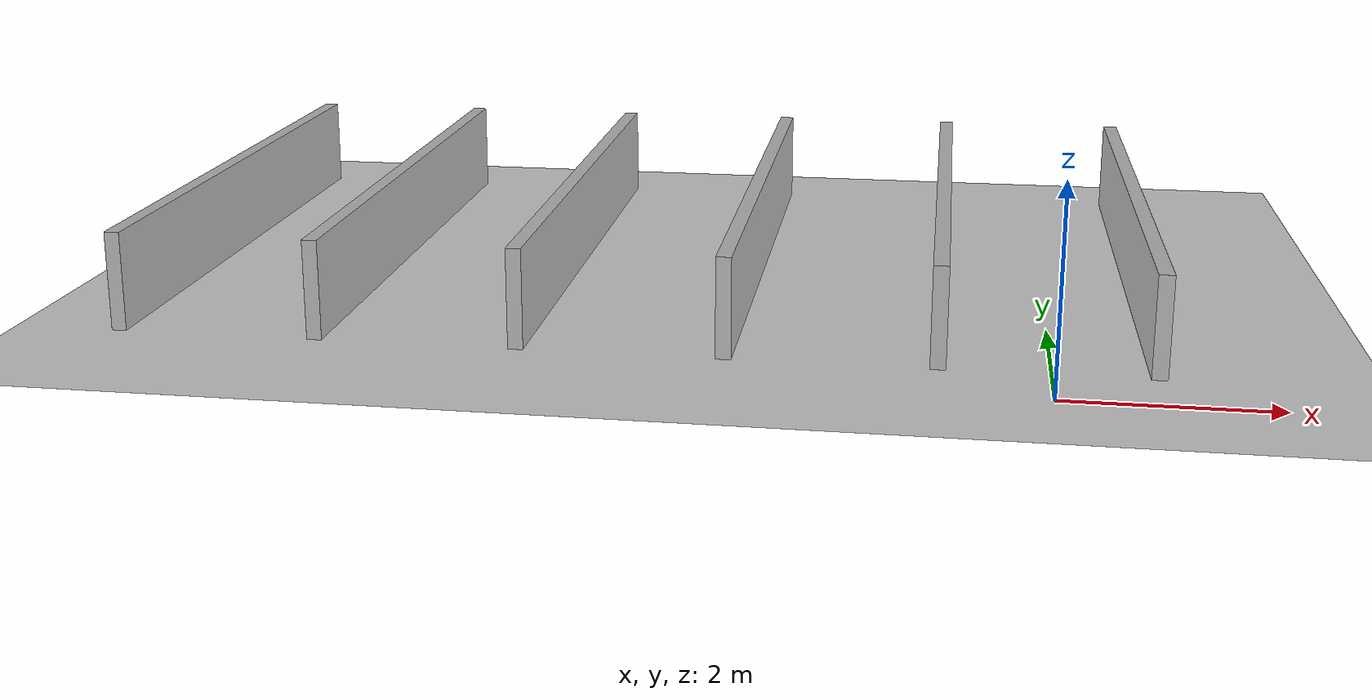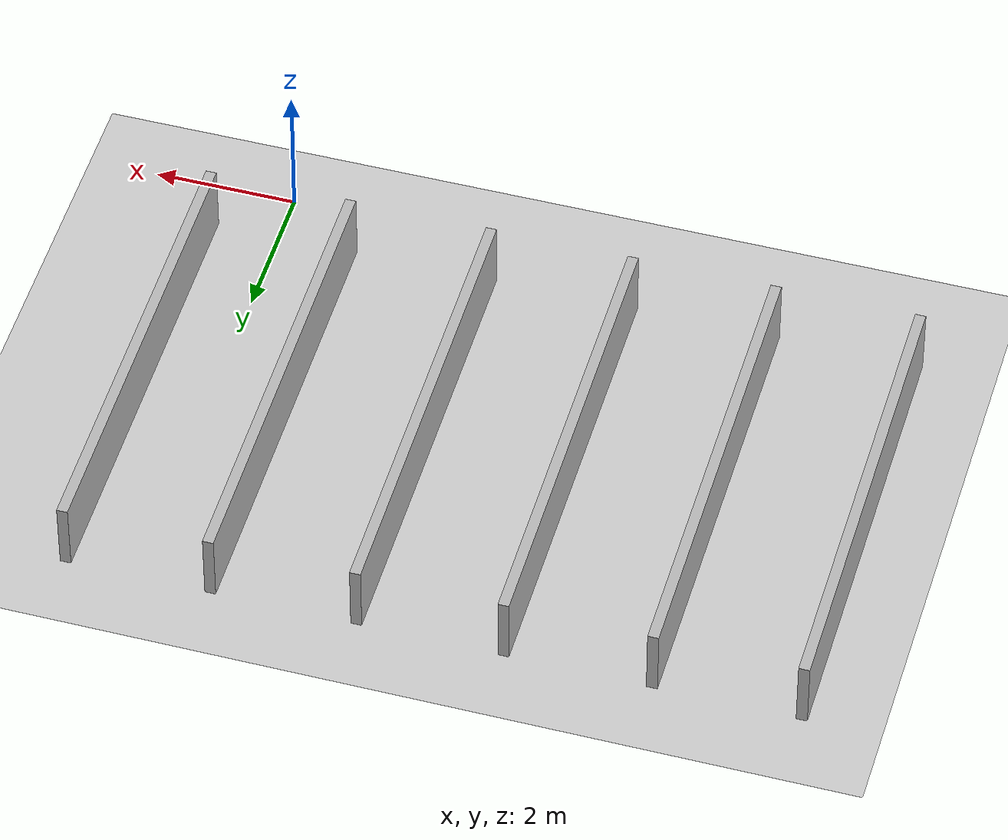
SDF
<sdf version="1.7">
 <world name="default">
  <light name="sun" type="directional">
   <pose>0 0 10 0 -0 0</pose>
   <diffuse>0.8 0.8 0.8 1</diffuse>
   <specular>0.2 0.2 0.2 1</specular>
   <attenuation>
    <range>1000</range>
    <constant>0.9</constant>
    <linear>0.01</linear>
    <quadratic>0.001</quadratic>
   </attenuation>
   <direction>-0.5 0.1 -0.9</direction>
   <spot><inner_angle>0</inner_angle><outer_angle>0</outer_angle><falloff>0</falloff></spot>
  </light>
  <model name="ground_plane">
   <static>1</static>
   <link name="link">
    <collision name="collision">
     <geometry><plane><normal>0 0 1</normal><size>100 100</size></plane></geometry>
     <surface><friction><ode><mu>100</mu><mu2>50</mu2></ode></friction></surface>
    </collision>
    <visual name="visual">
     <cast_shadows>0</cast_shadows>
     <geometry><plane><normal>0 0 1</normal><size>100 100</size></plane></geometry>
     <material>
      <script><uri>file://media/materials/scripts/gazebo.material</uri><name>Gazebo/Grey</name></script>
     </material>
    </visual>
   </link>
  </model>
  <gravity>0 0 -9.8</gravity>
  <magnetic_field>6e-06 2.3e-05 -4.2e-05</magnetic_field>
  <atmosphere type="adiabatic"/>
  <physics type="ode">
   <max_step_size>0.001</max_step_size>
   <real_time_factor>1</real_time_factor>
   <real_time_update_rate>1000</real_time_update_rate>
  </physics>
  <scene><ambient>0.4 0.4 0.4 1</ambient><background>0.7 0.7 0.7 1</background><shadows>1</shadows></scene>
  <spherical_coordinates>
   <surface_model>EARTH_WGS84</surface_model>
   <latitude_deg>38.161479</latitude_deg>
   <longitude_deg>-122.454630</longitude_deg>
   <elevation>488.0</elevation>
   <heading_deg>180</heading_deg>
  </spherical_coordinates>
  <include>
   <uri>/workspace/src/app/nav2_gps/nav2_gps_waypoint_follower_demo/models/fence2</uri>
   <pose>-4.05 3.91 0.0 0.0 0.0 1.575</pose>
  </include>
 </world>
</sdf>

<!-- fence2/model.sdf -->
<sdf version='1.7'>
  <model name='fence2'>
    <pose>5 0 0 0 -0 0</pose>
    <link name='Wall_0'>
      <collision name='Wall_0_Collision'>
        <geometry>
          <box>
            <size>6.5 0.15 1</size>
          </box>
        </geometry>
        <pose>0 0 0.5 0 -0 0</pose>
      </collision>
      <visual name='Wall_0_Visual'>
        <pose>0 0 0.5 0 -0 0</pose>
        <geometry>
          <box>
            <size>6.5 0.15 1</size>
          </box>
        </geometry>
        <material>
          <script>
            <uri>model://fence2/materials/scripts</uri>
            <uri>model://fence2/materials/textures</uri>
            <name>fence_material</name>
          </script>
        </material>
        <meta>
          <layer>0</layer>
        </meta>
      </visual>
      <pose>0 1 0 0 -0 0</pose>
    </link>
    <link name='Wall_10'>
      <collision name='Wall_10_Collision'>
        <geometry>
          <box>
            <size>6.5 0.15 1</size>
          </box>
        </geometry>
        <pose>0 0 0.5 0 -0 0</pose>
      </collision>
      <visual name='Wall_10_Visual'>
        <pose>0 0 0.5 0 -0 0</pose>
        <geometry>
          <box>
            <size>6.5 0.15 1</size>
          </box>
        </geometry>
        <material>
          <script>
            <uri>model://fence2/materials/scripts</uri>
            <uri>model://fence2/materials/textures</uri>
            <name>fence_material</name>
          </script>
        </material>
        <meta>
          <layer>0</layer>
        </meta>
      </visual>
      <pose>0 -3 0 0 -0 0</pose>
    </link>
    <link name='Wall_12'>
      <collision name='Wall_12_Collision'>
        <geometry>
          <box>
            <size>6.5 0.15 1</size>
          </box>
        </geometry>
        <pose>0 0 0.5 0 -0 0</pose>
      </collision>
      <visual name='Wall_12_Visual'>
        <pose>0 0 0.5 0 -0 0</pose>
        <geometry>
          <box>
            <size>6.5 0.15 1</size>
          </box>
        </geometry>
        <material>
          <script>
            <uri>model://fence2/materials/scripts</uri>
            <uri>model://fence2/materials/textures</uri>
            <name>fence_material</name>
          </script>
        </material>
        <meta>
          <layer>0</layer>
        </meta>
      </visual>
      <pose>0 -5 0 0 -0 0</pose>
    </link>

    <link name='Wall_2'>
      <collision name='Wall_2_Collision'>
        <geometry>
          <box>
            <size>6.5 0.15 1</size>
          </box>
        </geometry>
        <pose>0 0 0.5 0 -0 0</pose>
      </collision>
      <visual name='Wall_2_Visual'>
        <pose>0 0 0.5 0 -0 0</pose>
        <geometry>
          <box>
            <size>6.5 0.15 1</size>
          </box>
        </geometry>
        <material>
          <script>
            <uri>model://fence2/materials/scripts</uri>
            <uri>model://fence2/materials/textures</uri>
            <name>fence_material</name>
          </script>
        </material>
        <meta>
          <layer>0</layer>
        </meta>
      </visual>
      <pose>0 3 0 0 -0 0</pose>
    </link>
    <link name='Wall_4'>
      <collision name='Wall_4_Collision'>
        <geometry>
          <box>
            <size>6.5 0.15 1</size>
          </box>
        </geometry>
        <pose>0 0 0.5 0 -0 0</pose>
      </collision>
      <visual name='Wall_4_Visual'>
        <pose>0 0 0.5 0 -0 0</pose>
        <geometry>
          <box>
            <size>6.5 0.15 1</size>
          </box>
        </geometry>
        <material>
          <script>
            <uri>model://fence2/materials/scripts</uri>
            <uri>model://fence2/materials/textures</uri>
            <name>fence_material</name>
          </script>
        </material>
        <meta>
          <layer>0</layer>
        </meta>
      </visual>
      <pose>0 5 0 0 -0 0</pose>
    </link>

    <link name='Wall_8'>
      <collision name='Wall_8_Collision'>
        <geometry>
          <box>
            <size>6.5 0.15 1</size>
          </box>
        </geometry>
        <pose>0 0 0.5 0 -0 0</pose>
      </collision>
      <visual name='Wall_8_Visual'>
        <pose>0 0 0.5 0 -0 0</pose>
        <geometry>
          <box>
            <size>6.5 0.15 1</size>
          </box>
        </geometry>
        <material>
          <script>
            <uri>model://fence2/materials/scripts</uri>
            <uri>model://fence2/materials/textures</uri>
            <name>fence_material</name>
          </script>
        </material>
        <meta>
          <layer>0</layer>
        </meta>
      </visual>
      <pose>0 -1 0 0 -0 0</pose>
    </link>
    <static>1</static>
  </model>
</sdf>
